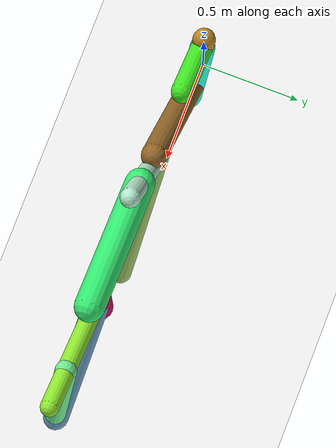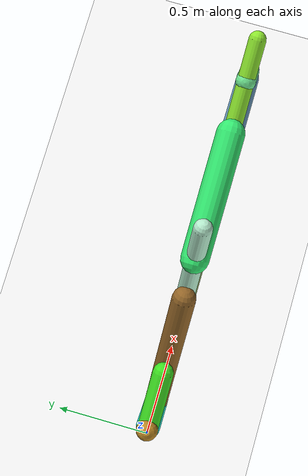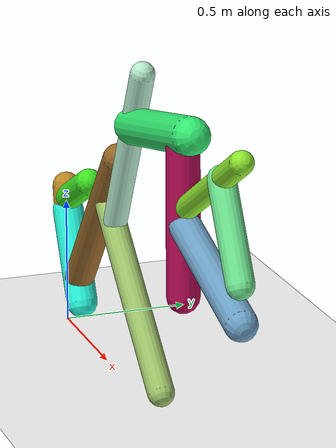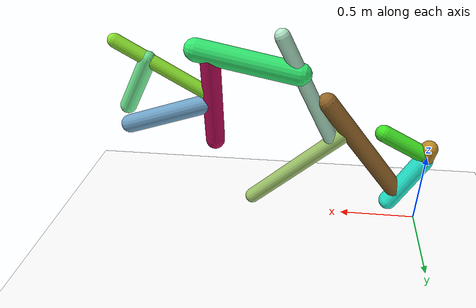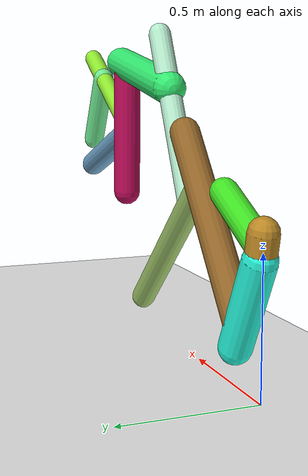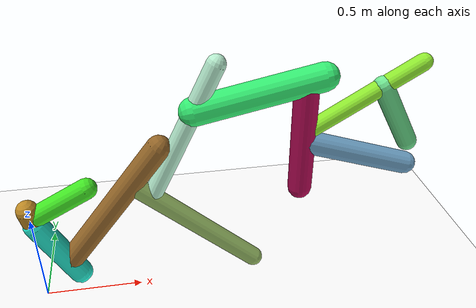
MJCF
<mujoco model="morphology">
  <option timestep="0.01"/>
  <default>
    <default class="/"/>
    <default class="0/"/>
    <default class="0/1/"/>
    <default class="0/2/"/>
    <default class="0/2/3/"/>
    <default class="0/2/3/4/"/>
    <default class="0/2/3/4/5/"/>
    <default class="0/2/3/4/5/6/"/>
    <default class="0/2/3/4/5/6/7/"/>
    <default class="0/2/3/4/5/6/7/8/"/>
    <default class="0/2/3/4/5/6/7/9/"/>
    <default class="0/2/3/4/5/6/7/9/10/"/>
  </default>
  <asset>
    <texture name="texplane" type="2d" builtin="checker" rgb1="0.10000000000000001 0.20000000000000001 0.29999999999999999" rgb2="0.20000000000000001 0.29999999999999999 0.40000000000000002" width="300" height="300"/>
    <material name="MatPlane" class="/" texture="texplane" texrepeat="20 20" specular="1" shininess="1" reflectance="0.5"/>
  </asset>
  <worldbody>
    <light name="//unnamed_light_0" class="/" directional="true" pos="0 0 1.5" dir="0 0 -1.3" cutoff="100" exponent="1" diffuse="1 1 1" specular="0.10000000000000001 0.10000000000000001 0.10000000000000001"/>
    <geom name="ground" class="/" type="plane" size="15 15 0.5" material="MatPlane" rgba="1 1 1 1"/>
    <site name="body" class="/" size="9.9999999999999995e-07 9.9999999999999995e-07 9.9999999999999995e-07" pos="0 0 0.56546873450279234"/>
    <body pos="0 0 0.56546873450279234" name="0/">
      <joint name="0/rootx/" class="/" type="slide" axis="1 0 0" limited="false" stiffness="0" armature="0" damping="0"/>
      <joint name="0/rootz/" class="/" type="slide" axis="0 0 1" limited="false" stiffness="0" armature="0" damping="0"/>
      <joint name="0/rooty/" class="/" type="hinge" axis="0 1 0" limited="false" stiffness="0" armature="0" damping="0"/>
      <geom name="0/geom" class="0/" type="capsule" contype="1" conaffinity="1" condim="3" size="0.054901762958965164" rgba="0.74776139616139159 0.54357964836530814 0.14886407272141711 1" friction="0.59999999999999998 0.10000000000000001 0.10000000000000001" fromto="0 0 0 0.024612115647364319 0 -0.11372423137645837"/>
      <site name="0/end0" class="0/" size="0.0050000000000000001" pos="0.024612115647364319 0 -0.11372423137645837"/>
      <site name="0/attach1" class="0/" size="9.9999999999999995e-07 9.9999999999999995e-07 9.9999999999999995e-07" pos="0.010739970072903381 0 -0.049625755828833037"/>
      <body pos="0.010739970072903381 0 -0.049625755828833037" name="0/1/">
        <joint name="0/1/joint/" class="0/" type="hinge" axis="0 1 0" limited="true" range="-44.358924499206509 44.358924499206509"/>
        <geom name="0/1/geom" class="0/1/" type="capsule" contype="1" conaffinity="1" condim="3" size="0.052491373580407882" rgba="0.25571056371010681 0.90015737585719002 0.13972779999026597 1" friction="0.59999999999999998 0.10000000000000001 0.10000000000000001" fromto="0 0 0 0.28017787073409517 0 0.1478626328908651"/>
        <site name="0/1/end1" class="0/1/" size="0.0050000000000000001" pos="0.28017787073409517 0 0.1478626328908651"/>
      </body>
      <site name="0/attach2" class="0/" size="9.9999999999999995e-07 9.9999999999999995e-07 9.9999999999999995e-07" pos="0.019885999746331064 0 -0.091886454163729314"/>
      <body pos="0.019885999746331064 0 -0.091886454163729314" name="0/2/">
        <joint name="0/2/joint/" class="0/" type="hinge" axis="0 1 0" limited="true" range="-63.275676252452925 63.275676252452925"/>
        <geom name="0/2/geom" class="0/2/" type="capsule" contype="1" conaffinity="1" condim="3" size="0.061159066010090718" rgba="0.15478771125491686 0.97431942126505866 0.87125956837272023 1" friction="0.59999999999999998 0.10000000000000001 0.10000000000000001" fromto="0 0 0 0.17246981578715515 0 -0.336832717195721"/>
        <site name="0/2/end2" class="0/2/" size="0.0050000000000000001" pos="0.17246981578715515 0 -0.336832717195721"/>
        <site name="0/2/attach3" class="0/2/" size="9.9999999999999995e-07 9.9999999999999995e-07 9.9999999999999995e-07" pos="0.1305200044008934 0 -0.25490493817773652"/>
        <body pos="0.1305200044008934 0 -0.25490493817773652" name="0/2/3/">
          <geom name="0/2/3/geom" class="0/2/3/" type="capsule" contype="1" conaffinity="1" condim="3" size="0.059406847095029788" rgba="0.58632887774624809 0.40440702744869095 0.16158837155290107 1" friction="0.59999999999999998 0.10000000000000001 0.10000000000000001" fromto="0 0 0 0.49725639602334581 0 0.63838242272172629"/>
          <site name="0/2/3/end3" class="0/2/3/" size="0.0050000000000000001" pos="0.49725639602334581 0 0.63838242272172629"/>
          <site name="0/2/3/attach4" class="0/2/3/" size="9.9999999999999995e-07 9.9999999999999995e-07 9.9999999999999995e-07" pos="0.34965551987471344 0 0.44889103424456417"/>
          <body pos="0.34965551987471344 0 0.44889103424456417" name="0/2/3/4/">
            <joint name="0/2/3/4/joint/" class="0/2/3/" type="hinge" axis="0 1 0" limited="true" range="-48.212469715033642 48.212469715033642"/>
            <geom name="0/2/3/4/geom" class="0/2/3/4/" type="capsule" contype="1" conaffinity="1" condim="3" size="0.050471561737960531" rgba="0.61851511924443847 0.76639442262492963 0.41269580881241563 1" friction="0.59999999999999998 0.10000000000000001 0.10000000000000001" fromto="0 0 0 0.62242985979844656 0 -0.56756838511065943"/>
            <site name="0/2/3/4/end4" class="0/2/3/4/" size="0.0050000000000000001" pos="0.62242985979844656 0 -0.56756838511065943"/>
            <site name="0/2/3/4/attach5" class="0/2/3/4/" size="9.9999999999999995e-07 9.9999999999999995e-07 9.9999999999999995e-07" pos="0.097372084762731084 0 -0.088789629921574423"/>
            <body pos="0.097372084762731084 0 -0.088789629921574423" name="0/2/3/4/5/">
              <joint name="0/2/3/4/5/joint/" class="0/2/3/4/" type="hinge" axis="0 1 0" limited="true" range="-60.834125113018452 60.834125113018452"/>
              <geom name="0/2/3/4/5/geom" class="0/2/3/4/5/" type="capsule" contype="1" conaffinity="1" condim="3" size="0.04594320902917063" rgba="0.7166000040711854 0.93008182352746005 0.81045068877705806 1" friction="0.59999999999999998 0.10000000000000001 0.10000000000000001" fromto="0 0 0 0.32222293100120947 0 0.66996652750542918"/>
              <site name="0/2/3/4/5/end5" class="0/2/3/4/5/" size="0.0050000000000000001" pos="0.32222293100120947 0 0.66996652750542918"/>
              <site name="0/2/3/4/5/attach6" class="0/2/3/4/5/" size="9.9999999999999995e-07 9.9999999999999995e-07 9.9999999999999995e-07" pos="0.21628619038105565 0 0.44970265606711307"/>
              <body pos="0.21628619038105565 0 0.44970265606711307" name="0/2/3/4/5/6/">
                <joint name="0/2/3/4/5/6/joint/" class="0/2/3/4/5/" type="hinge" axis="0 1 0" limited="true" range="-54.732952438092163 54.732952438092163"/>
                <geom name="0/2/3/4/5/6/geom" class="0/2/3/4/5/6/" type="capsule" contype="1" conaffinity="1" condim="3" size="0.068865628119952477" rgba="0.2022889582923223 0.925922714495654 0.44611270551875359 1" friction="0.59999999999999998 0.10000000000000001 0.10000000000000001" fromto="0 0 0 0.60448915319416274 0 0.12415399125374149"/>
                <site name="0/2/3/4/5/6/end6" class="0/2/3/4/5/6/" size="0.0050000000000000001" pos="0.60448915319416274 0 0.12415399125374149"/>
                <site name="0/2/3/4/5/6/attach7" class="0/2/3/4/5/6/" size="9.9999999999999995e-07 9.9999999999999995e-07 9.9999999999999995e-07" pos="0.52467555586415582 0 0.10776134531050406"/>
                <body pos="0.52467555586415582 0 0.10776134531050406" name="0/2/3/4/5/6/7/">
                  <geom name="0/2/3/4/5/6/7/geom" class="0/2/3/4/5/6/7/" type="capsule" contype="1" conaffinity="1" condim="3" size="0.060216261351489379" rgba="0.72345958815418177 0.039462573448341476 0.33746756483731111 1" friction="0.59999999999999998 0.10000000000000001 0.10000000000000001" fromto="0 0 0 0.012476499359297177 0 -0.58603371061305309"/>
                  <site name="0/2/3/4/5/6/7/end7" class="0/2/3/4/5/6/7/" size="0.0050000000000000001" pos="0.012476499359297177 0 -0.58603371061305309"/>
                  <site name="0/2/3/4/5/6/7/attach8" class="0/2/3/4/5/6/7/" size="9.9999999999999995e-07 9.9999999999999995e-07 9.9999999999999995e-07" pos="0.0066980206656119439 0 -0.31461276047006476"/>
                  <body pos="0.0066980206656119439 0 -0.31461276047006476" name="0/2/3/4/5/6/7/8/">
                    <joint name="0/2/3/4/5/6/7/8/joint/" class="0/2/3/4/5/6/7/" type="hinge" axis="0 1 0" limited="true" range="-41.751263411827587 41.751263411827587"/>
                    <geom name="0/2/3/4/5/6/7/8/geom" class="0/2/3/4/5/6/7/8/" type="capsule" contype="1" conaffinity="1" condim="3" size="0.05817114908106074" rgba="0.43035321112863001 0.63543963091171951 0.77989054183248707 1" friction="0.59999999999999998 0.10000000000000001 0.10000000000000001" fromto="0 0 0 0.55649090354339892 0 -0.18373620441273908"/>
                    <site name="0/2/3/4/5/6/7/8/end8" class="0/2/3/4/5/6/7/8/" size="0.0050000000000000001" pos="0.55649090354339892 0 -0.18373620441273908"/>
                  </body>
                  <site name="0/2/3/4/5/6/7/attach9" class="0/2/3/4/5/6/7/" size="9.9999999999999995e-07 9.9999999999999995e-07 9.9999999999999995e-07" pos="0.0058003153740999449 0 -0.27244664096237425"/>
                  <body pos="0.0058003153740999449 0 -0.27244664096237425" name="0/2/3/4/5/6/7/9/">
                    <joint name="0/2/3/4/5/6/7/9/joint/" class="0/2/3/4/5/6/7/" type="hinge" axis="0 1 0" limited="true" range="-37.287583925620609 37.287583925620609"/>
                    <geom name="0/2/3/4/5/6/7/9/geom" class="0/2/3/4/5/6/7/9/" type="capsule" contype="1" conaffinity="1" condim="3" size="0.042515888778779223" rgba="0.56091566900747181 0.91255881938323735 0.18510493902090497 1" friction="0.59999999999999998 0.10000000000000001 0.10000000000000001" fromto="0 0 0 0.54412108703126916 0 0.32639029058814395"/>
                    <site name="0/2/3/4/5/6/7/9/end9" class="0/2/3/4/5/6/7/9/" size="0.0050000000000000001" pos="0.54412108703126916 0 0.32639029058814395"/>
                    <site name="0/2/3/4/5/6/7/9/attach10" class="0/2/3/4/5/6/7/9/" size="9.9999999999999995e-07 9.9999999999999995e-07 9.9999999999999995e-07" pos="0.36622094512599035 0 0.21967713354264395"/>
                    <body pos="0.36622094512599035 0 0.21967713354264395" name="0/2/3/4/5/6/7/9/10/">
                      <joint name="0/2/3/4/5/6/7/9/10/joint/" class="0/2/3/4/5/6/7/9/" type="hinge" axis="0 1 0" limited="true" range="-54.077773725420002 54.077773725420002"/>
                      <geom name="0/2/3/4/5/6/7/9/10/geom" class="0/2/3/4/5/6/7/9/10/" type="capsule" contype="1" conaffinity="1" condim="3" size="0.049491948843572844" rgba="0.44000786488875521 0.91339329586813978 0.57407237672912126 1" friction="0.59999999999999998 0.10000000000000001 0.10000000000000001" fromto="0 0 0 0.17988998387305344 0 -0.31226290936139478"/>
                      <site name="0/2/3/4/5/6/7/9/10/end10" class="0/2/3/4/5/6/7/9/10/" size="0.0050000000000000001" pos="0.17988998387305344 0 -0.31226290936139478"/>
                    </body>
                  </body>
                </body>
              </body>
            </body>
          </body>
        </body>
      </body>
      <camera name="0/side" class="0/" mode="trackcom" pos="0.40000000000000002 -4 0.20000000000000001" quat="0.70699999999999996 0.70699999999999996 0 0"/>
    </body>
  </worldbody>
  <actuator>
    <motor name="0/1/motor" class="0/1/" ctrllimited="true" ctrlrange="-1 1" gear="61" joint="0/1/joint/"/>
    <motor name="0/2/motor" class="0/2/" ctrllimited="true" ctrlrange="-1 1" gear="55" joint="0/2/joint/"/>
    <motor name="0/2/3/4/motor" class="0/2/3/4/" ctrllimited="true" ctrlrange="-1 1" gear="82" joint="0/2/3/4/joint/"/>
    <motor name="0/2/3/4/5/motor" class="0/2/3/4/5/" ctrllimited="true" ctrlrange="-1 1" gear="56" joint="0/2/3/4/5/joint/"/>
    <motor name="0/2/3/4/5/6/motor" class="0/2/3/4/5/6/" ctrllimited="true" ctrlrange="-1 1" gear="54" joint="0/2/3/4/5/6/joint/"/>
    <motor name="0/2/3/4/5/6/7/8/motor" class="0/2/3/4/5/6/7/8/" ctrllimited="true" ctrlrange="-1 1" gear="53" joint="0/2/3/4/5/6/7/8/joint/"/>
    <motor name="0/2/3/4/5/6/7/9/motor" class="0/2/3/4/5/6/7/9/" ctrllimited="true" ctrlrange="-1 1" gear="57" joint="0/2/3/4/5/6/7/9/joint/"/>
    <motor name="0/2/3/4/5/6/7/9/10/motor" class="0/2/3/4/5/6/7/9/10/" ctrllimited="true" ctrlrange="-1 1" gear="51" joint="0/2/3/4/5/6/7/9/10/joint/"/>
  </actuator>
  <sensor>
    <subtreelinvel name="velocity" body="0/"/>
  </sensor>
</mujoco>
